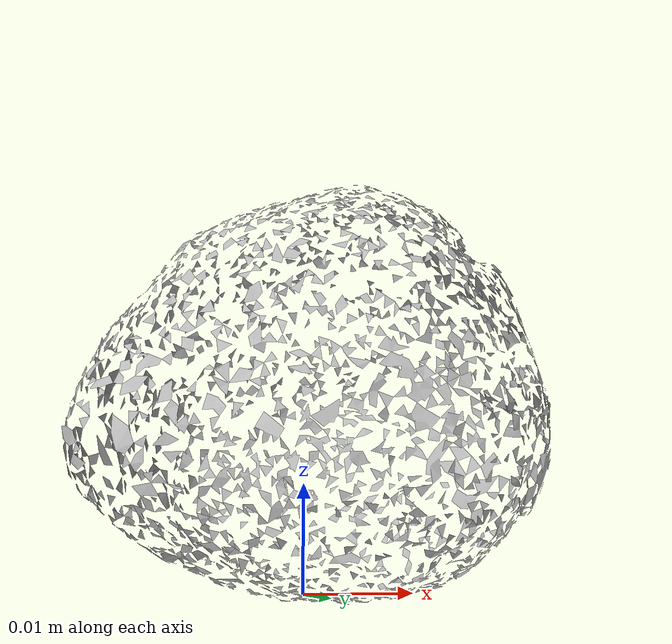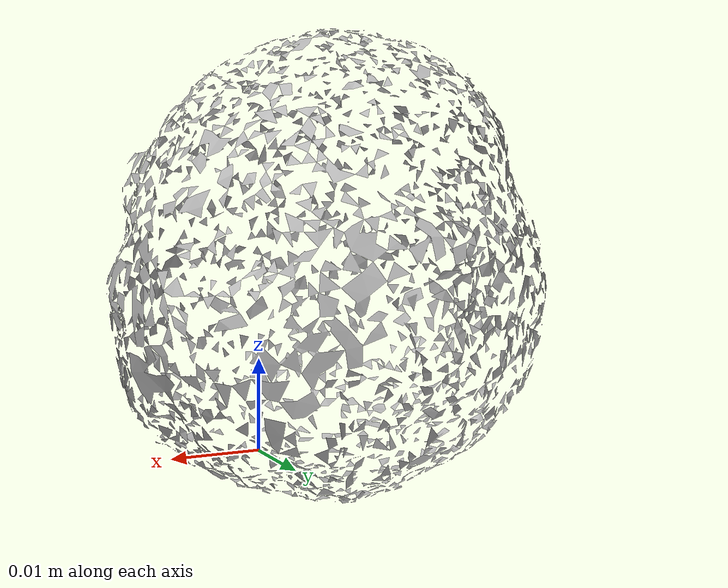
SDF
<?xml version='1.0'?>
<sdf version="1.4">
  <model name="strawberry">
    <static>false</static>
    <link name="link">
      <inertial>
        <pose>-0.0014938727773305587 0.015432679933728788 0.02111450326881559 1.7931441754927437 -0.1980273936530318 -0.8594619155466211</pose>
        <mass>4.832344833863233e-05</mass>
        <inertia>
          <ixx>1.1142887364251795e-08</ixx>
          <ixy>9.251929496783896e-25</ixy>
          <ixz>2.0522770518953985e-24</ixz>
          <iyy>1.0106109240846608e-08</iyy>
          <iyz>-4.2342023492700045e-25</iyz>
          <izz>9.086808374326581e-09</izz>
        </inertia>
      </inertial>
      <collision name="collision">
        <geometry>
          <mesh>
            <!-- Use a downsampled mesh for collisions -->
            <uri>model://012_strawberry/downsampled.obj</uri>
	        </mesh>
        </geometry>
        <surface>
      </surface>
      </collision>
      <visual name="visual">
        <geometry>
          <mesh>
            <uri>model://012_strawberry/google_16k/textured.obj</uri>
	        </mesh>
        </geometry>
        <material>
          <script>
            <uri>model://012_strawberry/strawberry.material</uri>
            <name>strawberry</name>
          </script>
        </material>
      </visual>
    </link>
  </model>
</sdf>
